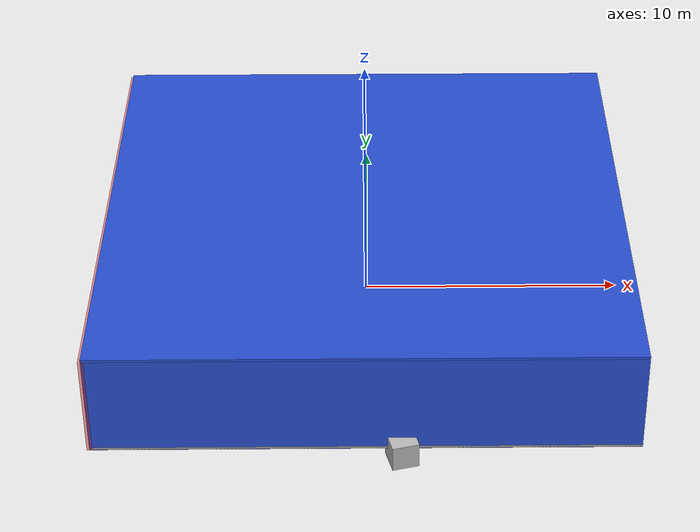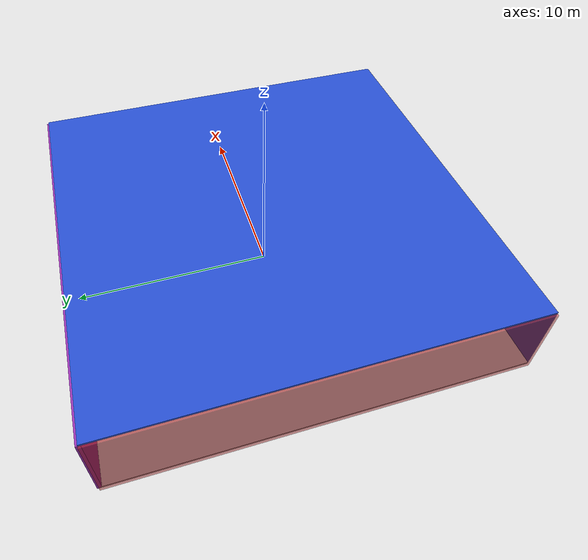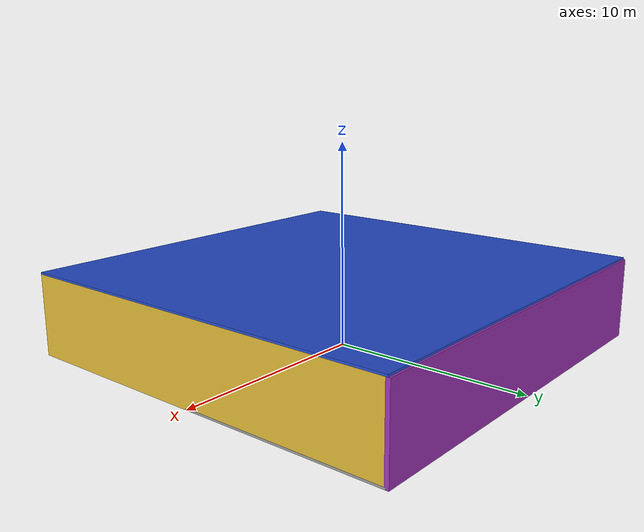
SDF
<sdf version="1.4">
 <world name="default">
  <physics type="ode">
   <max_step_size>0.001</max_step_size>
   <real_time_factor>1</real_time_factor>
   <real_time_update_rate>1000</real_time_update_rate>
   <gravity>0 0 -9.8</gravity>
  </physics>
  <scene><ambient>0.4 0.4 0.4 1</ambient><background>0.7 0.7 0.7 1</background><shadows>1</shadows></scene>
  <model name="Surrounding">
   <static>1</static>
   <link name="Ceiling">
    <collision name="Ceiling_Collision"><geometry><box><size>20 20 0.1</size></box></geometry></collision>
    <visual name="Ceiling_Visual">
     <geometry><box><size>20 20 0.1</size></box></geometry>
     <material>
      <script><uri>file://media/materials/scripts/gazebo.material</uri><name>Gazebo/BlueGlow</name></script>
     </material>
    </visual>
    <pose>0 0 4.05 0 0 0</pose>
   </link>
   <link name="Wall_South">
    <collision name="Wall_South_Collision">
     <geometry><box><size>20 0 4</size></box></geometry>
     <pose>0 0 2 0 -0 0</pose>
    </collision>
    <visual name="Wall_South_Visual">
     <pose>0 0 2 0 -0 0</pose>
     <geometry><box><size>20 0 4</size></box></geometry>
     <material>
      <script><uri>file://media/materials/scripts/gazebo.material</uri><name>Gazebo/BlueLaser</name></script>
     </material>
    </visual>
    <velocity_decay><linear>0</linear><angular>0</angular></velocity_decay>
    <pose>0 -10 0 0 -0 0</pose>
   </link>
   <link name="Wall_East">
    <collision name="Wall_21_Collision">
     <geometry><box><size>20 0 4</size></box></geometry>
     <pose>0 0 2 0 -0 0</pose>
    </collision>
    <visual name="Wall_21_Visual">
     <pose>0 0 2 0 -0 0</pose>
     <geometry><box><size>20 0 4</size></box></geometry>
     <material>
      <script><uri>file://media/materials/scripts/gazebo.material</uri><name>Gazebo/Gold</name></script>
     </material>
    </visual>
    <velocity_decay><linear>0</linear><angular>0</angular></velocity_decay>
    <pose>10 0 0 0 -0 1.5708</pose>
   </link>
   <link name="Wall_North">
    <collision name="Wall_22_Collision">
     <geometry><box><size>20 0.2 4</size></box></geometry>
     <pose>0 0 2 0 -0 0</pose>
    </collision>
    <visual name="Wall_22_Visual">
     <pose>0 0 2 0 -0 0</pose>
     <geometry><box><size>20 0.2 4</size></box></geometry>
     <material>
      <script><uri>file://media/materials/scripts/gazebo.material</uri><name>Gazebo/PurpleGlow</name></script>
     </material>
    </visual>
    <velocity_decay><linear>0</linear><angular>0</angular></velocity_decay>
    <pose>0 10 0 0 -0 0</pose>
   </link>
   <link name="Wall_West">
    <collision name="Wall_23_Collision">
     <geometry><box><size>20 0.2 4</size></box></geometry>
     <pose>0 0 2 0 -0 0</pose>
    </collision>
    <visual name="Wall_23_Visual">
     <pose>0 0 2 0 -0 0</pose>
     <geometry><box><size>20 0.2 4</size></box></geometry>
     <material>
      <script><uri>file://media/materials/scripts/gazebo.material</uri><name>Gazebo/RedTransparent</name></script>
     </material>
    </visual>
    <velocity_decay><linear>0</linear><angular>0</angular></velocity_decay>
    <pose>-10 0 0 0 0 -1.5708</pose>
   </link>
   <link name="Ground_link">
    <collision name="collision">
     <pose>0 0 .05 0 -0 0</pose>
     <geometry><box><size>20 20 0.1</size></box></geometry>
    </collision>
    <visual name="visual">
     <pose>0 0 .05 0 -0 0</pose>
     <geometry><box><size>20 20 0.1</size></box></geometry>
     <material>
      <script><uri>file://media/materials/scripts/gazebo.material</uri><name>Gazebo/Grey</name></script>
     </material>
    </visual>
   </link>
   <static>1</static>
  </model>
  <spherical_coordinates>
   <surface_model>EARTH_WGS84</surface_model>
   <latitude_deg>0</latitude_deg>
   <longitude_deg>0</longitude_deg>
   <elevation>0</elevation>
   <heading_deg>0</heading_deg>
  </spherical_coordinates>
  <light name="lightball_0" type="diffuse">
   <diffuse>0.8 0.8 0.8 1</diffuse>
   <specular>0.2 0.2 0.2 1</specular>
   <attenuation>
    <range>100</range>
    <constant>0.7</constant>
    <linear>0.01</linear>
    <quadratic>0.001</quadratic>
   </attenuation>
   <direction>-0.5 0.1 -0.9</direction>
   <pose>4.01904679276 7.54604393216 1.25552067162 0 0 0</pose>
  </light>
  <light name="lightball_1" type="diffuse">
   <diffuse>0.8 0.8 0.8 1</diffuse>
   <specular>0.2 0.2 0.2 1</specular>
   <attenuation>
    <range>100</range>
    <constant>0.7</constant>
    <linear>0.01</linear>
    <quadratic>0.001</quadratic>
   </attenuation>
   <direction>-0.5 0.1 -0.9</direction>
   <pose>-6.5619804978 1.21265763109 3.11687090931 0 0 0</pose>
  </light>
  <light name="lightball_2" type="diffuse">
   <diffuse>0.8 0.8 0.8 1</diffuse>
   <specular>0.2 0.2 0.2 1</specular>
   <attenuation>
    <range>100</range>
    <constant>0.7</constant>
    <linear>0.01</linear>
    <quadratic>0.001</quadratic>
   </attenuation>
   <direction>-0.5 0.1 -0.9</direction>
   <pose>-9.21881095237 -3.95642073115 1.94022273505 0 0 0</pose>
  </light>
  <include>
   <uri>model://textured_shapes</uri>
   <pose>0.918202053967 -8.59491281834 0 0 0 0.255650208321</pose>
  </include>
  <include>
   <uri>model://robocup_3Dsim_goal</uri>
   <pose>1.49174450608 -4.75894668657 0 0 0 0.199175900062</pose>
  </include>
  <include>
   <uri>model://textured_shapes</uri>
   <pose>1.28329822188 1.00922377622 0 0 0 2.37503240823</pose>
  </include>
 </world>
</sdf>

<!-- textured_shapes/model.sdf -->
<sdf version="1.6">
  <model name="textured_shapes">
    <pose>0 0 0.5 0 0 0</pose>
    <link name="box">
      <pose>0 -1.5 0 0 0 0</pose>
      <collision name="collision">
        <geometry>
          <box>
            <size>1 1 1</size>
          </box>
        </geometry>
      </collision>
      <visual name="visual">
        <geometry>
          <box>
            <size>1 1 1</size>
          </box>
        </geometry>
        <material>
          <script>
            <uri>model://../model_source/models/textured_shapes/materials/scripts</uri>
            <uri>model://../model_source/models/textured_shapes/materials/textures</uri>
            <name>TexturedShape/Squares</name>
          </script>
        </material>
      </visual>
    </link>
    <link name="sphere">
      <collision name="collision">
        <geometry>
          <sphere>
            <radius>0.5</radius>
          </sphere>
        </geometry>
      </collision>
      <visual name="visual">
        <geometry>
          <sphere>
            <radius>0.5</radius>
          </sphere>
        </geometry>
        <material>
          <script>
            <uri>model://../model_source/models/textured_shapes/materials/scripts</uri>
            <uri>model://../model_source/models/textured_shapes/materials/textures</uri>
            <name>TexturedShape/Squares</name>
          </script>
        </material>
      </visual>
    </link>
    <link name="cylinder">
      <pose>0 1.5 0 0 0 0</pose>
      <collision name="collision">
        <geometry>
          <cylinder>
            <radius>0.5</radius>
            <length>1</length>
          </cylinder>
        </geometry>
      </collision>
      <visual name="visual">
        <geometry>
          <cylinder>
            <radius>0.5</radius>
            <length>1</length>
          </cylinder>
        </geometry>
        <material>
          <script>
            <uri>model://../model_source/models/textured_shapes/materials/scripts</uri>
            <uri>model://../model_source/models/textured_shapes/materials/textures</uri>
            <name>TexturedShape/Squares</name>
          </script>
        </material>
      </visual>
    </link>
  </model>
</sdf>

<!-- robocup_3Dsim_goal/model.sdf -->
<sdf version="1.5">
  <model name="robocup_3d_goal">
    <static>true</static>
    <link name="left_post">
      <pose>0 1.05 0.45 0 0 0</pose>
      <collision name="collision">
        <geometry>
          <cylinder>
            <radius>0.05</radius>
            <length>0.9</length>
          </cylinder>
        </geometry>
      </collision>
      <visual name="visual">
        <geometry>
          <cylinder>
            <radius>0.05</radius>
            <length>0.9</length>
          </cylinder>
        </geometry>
        <material>
          <script>
            <uri>file://media/materials/scripts/gazebo.material</uri>
            <name>Gazebo/ZincYellow</name>
          </script>
        </material>
      </visual>
    </link>
    <link name="left_support_horiz_lower">
      <pose>0.30 1.05 0.01 0 0 0</pose>
      <collision name="collision">
        <geometry>
          <box>
            <size>0.50 0.02 0.02</size>
          </box>
        </geometry>
      </collision>
      <visual name="visual">
        <geometry>
          <box>
            <size>0.50 0.02 0.02</size>
          </box>
        </geometry>
        <material>
          <script>
            <uri>file://media/materials/scripts/gazebo.material</uri>
            <name>Gazebo/White</name>
          </script>
        </material>
      </visual>
    </link>
    <link name="left_support_horiz_upper">
      <pose>0.30 1.05 0.79 0 0 0</pose>
      <collision name="collision">
        <geometry>
          <box>
            <size>0.50 0.02 0.02</size>
          </box>
        </geometry>
      </collision>
      <visual name="visual">
        <geometry>
          <box>
            <size>0.50 0.02 0.02</size>
          </box>
        </geometry>
        <material>
          <script>
            <uri>file://media/materials/scripts/gazebo.material</uri>
            <name>Gazebo/White</name>
          </script>
        </material>
      </visual>
    </link>
    <link name="left_support_vertical">
      <pose>0.56 1.05 0.4 0 1.5708 0</pose>
      <collision name="collision">
        <geometry>
          <box>
            <size>0.80 0.02 0.02</size>
          </box>
        </geometry>
      </collision>
      <visual name="visual">
        <geometry>
          <box>
            <size>0.80 0.02 0.02</size>
          </box>
        </geometry>
        <material>
          <script>
            <uri>file://media/materials/scripts/gazebo.material</uri>
            <name>Gazebo/White</name>
          </script>
        </material>
      </visual>
    </link>
    <link name="right_support_horiz_lower">
      <pose>0.30 -1.05 0.01 0 0 0</pose>
      <collision name="collision">
        <geometry>
          <box>
            <size>0.50 0.02 0.02</size>
          </box>
        </geometry>
      </collision>
      <visual name="visual">
        <geometry>
          <box>
            <size>0.50 0.02 0.02</size>
          </box>
        </geometry>
        <material>
          <script>
            <uri>file://media/materials/scripts/gazebo.material</uri>
            <name>Gazebo/White</name>
          </script>
        </material>
      </visual>
    </link>
    <link name="right_support_horiz_upper">
      <pose>0.30 -1.05 0.79 0 0 0</pose>
      <collision name="collision">
        <geometry>
          <box>
            <size>0.50 0.02 0.02</size>
          </box>
        </geometry>
      </collision>
      <visual name="visual">
        <geometry>
          <box>
            <size>0.50 0.02 0.02</size>
          </box>
        </geometry>
        <material>
          <script>
            <uri>file://media/materials/scripts/gazebo.material</uri>
            <name>Gazebo/White</name>
          </script>
        </material>
      </visual>
    </link>
    <link name="right_support_vertical">
      <pose>0.56 -1.05 0.4 0 1.5708 0</pose>
      <collision name="collision">
        <geometry>
          <box>
            <size>0.80 0.02 0.02</size>
          </box>
        </geometry>
      </collision>
      <visual name="visual">
        <geometry>
          <box>
            <size>0.80 0.02 0.02</size>
          </box>
        </geometry>
        <material>
          <script>
            <uri>file://media/materials/scripts/gazebo.material</uri>
            <name>Gazebo/White</name>
          </script>
        </material>
      </visual>
    </link>
    <link name="center_support_horiz_lower">
      <pose>0.56 0 0.01 0 1.5708 0</pose>
      <collision name="collision">
        <geometry>
          <box>
            <size>0.02 2.08 0.02</size>
          </box>
        </geometry>
      </collision>
      <visual name="visual">
        <geometry>
          <box>
            <size>0.02 2.08 0.02</size>
          </box>
        </geometry>
        <material>
          <script>
            <uri>file://media/materials/scripts/gazebo.material</uri>
            <name>Gazebo/White</name>
          </script>
        </material>
      </visual>
    </link>
    <link name="center_support_horiz_upper">
      <pose>0.56 0 0.79 0 1.5708 0</pose>
      <collision name="collision">
        <geometry>
          <box>
            <size>0.02 2.08 0.02</size>
          </box>
        </geometry>
      </collision>
      <visual name="visual">
        <geometry>
          <box>
            <size>0.02 2.08 0.02</size>
          </box>
        </geometry>
        <material>
          <script>
            <uri>file://media/materials/scripts/gazebo.material</uri>
            <name>Gazebo/White</name>
          </script>
        </material>
      </visual>
    </link>
    <link name="right_post">
      <pose>0 -1.05 0.45 0 0 0</pose>
      <collision name="collision">
        <geometry>
          <cylinder>
            <radius>0.05</radius>
            <length>0.9</length>
          </cylinder>
        </geometry>
      </collision>
      <visual name="visual">
        <geometry>
          <cylinder>
            <radius>0.05</radius>
            <length>0.9</length>
          </cylinder>
        </geometry>
        <material>
          <script>
            <uri>file://media/materials/scripts/gazebo.material</uri>
            <name>Gazebo/ZincYellow</name>
          </script>
        </material>
      </visual>
    </link>
    <link name="crossbar">
      <pose>0 0 0.85 1.57 1.57 0</pose>
      <collision name="collision">
        <geometry>
          <cylinder>
            <radius>0.05</radius>
            <length>2.0</length>
          </cylinder>
        </geometry>
      </collision>
      <visual name="visual">
        <geometry>
          <cylinder>
            <radius>0.05</radius>
            <length>2.0</length>
          </cylinder>
        </geometry>
        <material>
          <script>
            <uri>file://media/materials/scripts/gazebo.material</uri>
            <name>Gazebo/ZincYellow</name>
          </script>
        </material>
      </visual>
    </link>
    <link name="center_net">
      <pose>0.56 0 0.40 0 0 0</pose>
      <collision name="collision">
        <geometry>
          <box>
            <size>0.01 2.1 0.80</size>
          </box>
        </geometry>
      </collision>
      <visual name="visual">
        <geometry>
          <box>
            <size>0.01 2.1 0.80</size>
          </box>
        </geometry>
        <material>
          <script>
            <uri>model://../model_source/models/robocup09_spl_field/materials/scripts/</uri>
            <uri>model://../model_source/models/robocup09_spl_field/materials/textures/</uri>
            <name>RoboCup/Net</name>
          </script>
        </material>
      </visual>
    </link>
    <link name="left_net">
      <pose>0.30 1.05 0.40 0 0 0</pose>
      <collision name="collision">
        <geometry>
          <box>
            <size>0.50 0.01 0.76</size>
          </box>
        </geometry>
      </collision>
      <visual name="visual">
        <geometry>
          <box>
            <size>0.50 0.01 0.76</size>
          </box>
        </geometry>
        <material>
          <script>
            <uri>model://../model_source/models/robocup09_spl_field/materials/scripts/</uri>
            <uri>model://../model_source/models/robocup09_spl_field/materials/textures/</uri>
            <name>RoboCup/Net</name>
          </script>
        </material>
      </visual>
    </link>
    <link name="right_net">
      <pose>0.30 -1.05 0.40 0 0 0</pose>
      <collision name="collision">
        <geometry>
          <box>
            <size>0.50 0.01 0.76</size>
          </box>
        </geometry>
      </collision>
      <visual name="visual">
        <geometry>
          <box>
            <size>0.50 0.01 0.76</size>
          </box>
        </geometry>
        <material>
          <script>
            <uri>model://../model_source/models/robocup09_spl_field/materials/scripts/</uri>
            <uri>model://../model_source/models/robocup09_spl_field/materials/textures/</uri>
            <name>RoboCup/Net</name>
          </script>
        </material>
      </visual>
    </link>
  </model>
</sdf>
